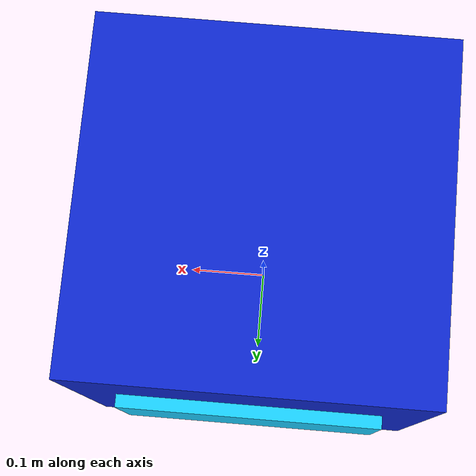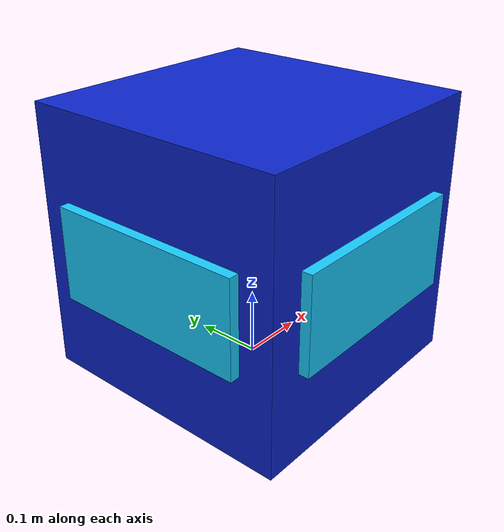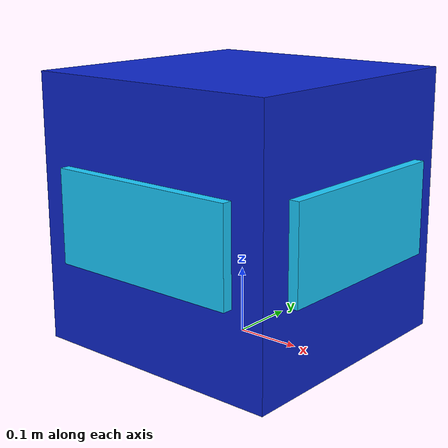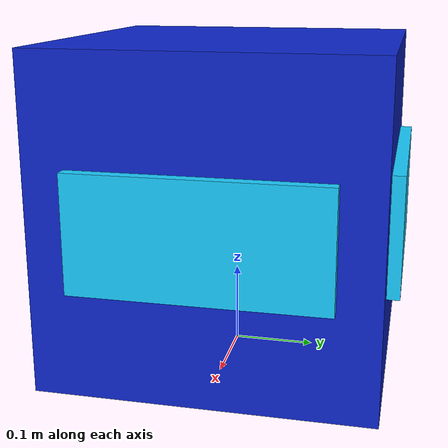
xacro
<?xml version="1.0"?>
<robot name="armor_target" xmlns:xacro="http://www.ros.org/wiki/xacro">
  <link name="target_body">
    <inertial>
      <origin xyz="0 0 0.20"/>
      <mass value="20.0"/>
      <inertia ixx="0.53" ixy="0" ixz="0" iyy="0.53" iyz="0" izz="0.53"/>
    </inertial>
    <visual>
      <origin xyz="0 0 0.20"/>
      <geometry><box size="0.40 0.40 0.40"/></geometry>
      <material name="blue"><color rgba="0.05 0.15 0.8 1"/></material>
    </visual>
    <collision name="body_collision">
      <origin xyz="0 0 0.20"/>
      <geometry><box size="0.38 0.38 0.38"/></geometry>
    </collision>
  </link>

  <link name="armor_front">
    <visual><geometry><box size="0.02 0.30 0.14"/></geometry><material name="armor"><color rgba="0.1 0.8 1 1"/></material></visual>
    <collision name="armor_front_collision"><geometry><box size="0.02 0.30 0.14"/></geometry></collision>
  </link>
  <joint name="armor_front_joint" type="fixed"><parent link="target_body"/><child link="armor_front"/><origin xyz="-0.205 0 0.20"/></joint>

  <link name="armor_rear">
    <visual><geometry><box size="0.02 0.30 0.14"/></geometry><material name="armor"/></visual>
    <collision name="armor_rear_collision"><geometry><box size="0.02 0.30 0.14"/></geometry></collision>
  </link>
  <joint name="armor_rear_joint" type="fixed"><parent link="target_body"/><child link="armor_rear"/><origin xyz="0.205 0 0.20"/></joint>

  <link name="armor_left">
    <visual><geometry><box size="0.30 0.02 0.14"/></geometry><material name="armor"/></visual>
    <collision name="armor_left_collision"><geometry><box size="0.30 0.02 0.14"/></geometry></collision>
  </link>
  <joint name="armor_left_joint" type="fixed"><parent link="target_body"/><child link="armor_left"/><origin xyz="0 0.205 0.20"/></joint>

  <link name="armor_right">
    <visual><geometry><box size="0.30 0.02 0.14"/></geometry><material name="armor"/></visual>
    <collision name="armor_right_collision"><geometry><box size="0.30 0.02 0.14"/></geometry></collision>
  </link>
  <joint name="armor_right_joint" type="fixed"><parent link="target_body"/><child link="armor_right"/><origin xyz="0 -0.205 0.20"/></joint>

  <gazebo><static>true</static></gazebo>
  <gazebo reference="target_body"><material>Gazebo/Blue</material></gazebo>
  <gazebo reference="armor_front"><material>Gazebo/Cyan</material></gazebo>
  <gazebo reference="armor_rear"><material>Gazebo/Cyan</material></gazebo>
  <gazebo reference="armor_left"><material>Gazebo/Cyan</material></gazebo>
  <gazebo reference="armor_right"><material>Gazebo/Cyan</material></gazebo>
</robot>
